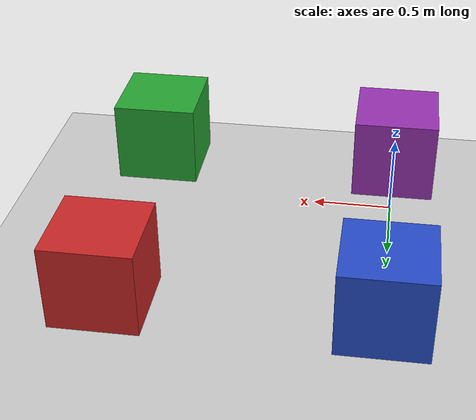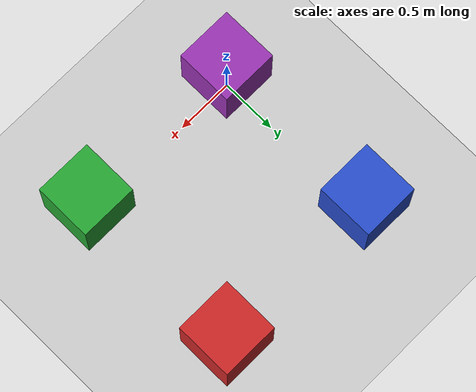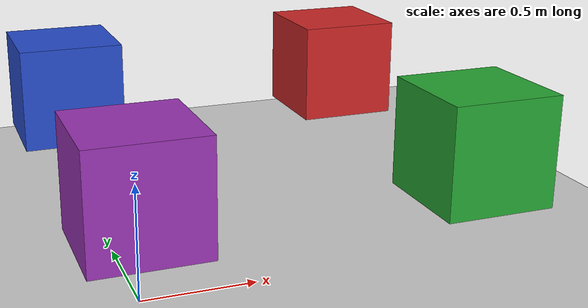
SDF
<?xml version="1.0" ?>
<sdf version="1.6">
  <world name="CaixasColoridas">
    <scene>
      <ambient>0.6 0.6 0.6 1</ambient>
      <background>0.7 0.7 0.7 1</background>
      <shadows>true</shadows>
    </scene>

    <!-- A global light source  -->
    <include>
      <uri>model://sun</uri>
      <pose> -2.0 2.0 2.0 0 0 0</pose>
    </include>

     <!-- Piso da sala vazio -->
    <include>
      <uri>model://ground_plane</uri>
    </include>

    <!-- Caixa Purple -->
    <model name='CaixaPurple'>
      <pose>0 0 0.5 0 -0 0</pose>
      <link name='link'>
        <inertial>
          <mass>1</mass>
          <inertia>
            <ixx>0.166667</ixx>
            <ixy>0</ixy>
            <ixz>0</ixz>
            <iyy>0.166667</iyy>
            <iyz>0</iyz>
            <izz>0.166667</izz>
          </inertia>
          <pose>0 0 0 0 -0 0</pose>
        </inertial>
        <collision name='collision'>
          <geometry>
            <box>
              <size>0.5 0.5 0.5</size>
            </box>
          </geometry>
          <max_contacts>10</max_contacts>
          <surface>
            <contact>
              <ode/>
            </contact>
            <bounce/>
            <friction>
              <torsional>
                <ode/>
              </torsional>
              <ode/>
            </friction>
          </surface>
        </collision>
        <visual name='visual'>
          <geometry>
            <box>
              <size>0.5 0.5 0.5</size>
            </box>
          </geometry>
          <material>
            <script>
              <name>Gazebo/Purple</name>
              <uri>file://media/materials/scripts/gazebo.material</uri>
            </script>
          </material>
        </visual>
        <self_collide>0</self_collide>
        <enable_wind>0</enable_wind>
        <kinematic>0</kinematic>
      </link>
    </model>

    <!-- Caixa Verde -->
    <model name='CaixaVerde'>
      <pose>1.5 0 0.5 0 -0 0</pose>
      <link name='link'>
        <inertial>
          <mass>1</mass>
          <inertia>
            <ixx>0.166667</ixx>
            <ixy>0</ixy>
            <ixz>0</ixz>
            <iyy>0.166667</iyy>
            <iyz>0</iyz>
            <izz>0.166667</izz>
          </inertia>
          <pose>0 0 0 0 -0 0</pose>
        </inertial>
        <collision name='collision'>
          <geometry>
            <box>
              <size>0.5 0.5 0.5</size>
            </box>
          </geometry>
          <max_contacts>10</max_contacts>
          <surface>
            <contact>
              <ode/>
            </contact>
            <bounce/>
            <friction>
              <torsional>
                <ode/>
              </torsional>
              <ode/>
            </friction>
          </surface>
        </collision>
        <visual name='visual'>
          <geometry>
            <box>
              <size>0.5 0.5 0.5</size>
            </box>
          </geometry>
          <material>
            <script>
              <name>Gazebo/Green</name>
              <uri>file://media/materials/scripts/gazebo.material</uri>
            </script>
          </material>
        </visual>
        <self_collide>0</self_collide>
        <enable_wind>0</enable_wind>
        <kinematic>0</kinematic>
      </link>
    </model>

    <!-- Caixa Azul -->
    <model name='CaixaAzul'>
      <pose>0 1.5 0.5 0 -0 0</pose>
      <link name='link'>
        <inertial>
          <mass>1</mass>
          <inertia>
            <ixx>0.166667</ixx>
            <ixy>0</ixy>
            <ixz>0</ixz>
            <iyy>0.166667</iyy>
            <iyz>0</iyz>
            <izz>0.166667</izz>
          </inertia>
          <pose>0 0 0 0 -0 0</pose>
        </inertial>
        <collision name='collision'>
          <geometry>
            <box>
              <size>0.5 0.5 0.5</size>
            </box>
          </geometry>
          <max_contacts>10</max_contacts>
          <surface>
            <contact>
              <ode/>
            </contact>
            <bounce/>
            <friction>
              <torsional>
                <ode/>
              </torsional>
              <ode/>
            </friction>
          </surface>
        </collision>
        <visual name='visual'>
          <geometry>
            <box>
              <size>0.5 0.5 0.5</size>
            </box>
          </geometry>
          <material>
            <script>
              <name>Gazebo/Blue</name>
              <uri>file://media/materials/scripts/gazebo.material</uri>
            </script>
          </material>
        </visual>
        <self_collide>0</self_collide>
        <enable_wind>0</enable_wind>
        <kinematic>0</kinematic>
      </link>
    </model>

    <!-- Caixa Vermelha -->
    <model name='CaixaVermelha'>
      <pose>1.5 1.5 0.5 0 -0 0</pose>
      <link name='link'>
        <inertial>
          <mass>1</mass>
          <inertia>
            <ixx>0.166667</ixx>
            <ixy>0</ixy>
            <ixz>0</ixz>
            <iyy>0.166667</iyy>
            <iyz>0</iyz>
            <izz>0.166667</izz>
          </inertia>
          <pose>0 0 0 0 -0 0</pose>
        </inertial>
        <collision name='collision'>
          <geometry>
            <box>
              <size>0.5 0.5 0.5</size>
            </box>
          </geometry>
          <max_contacts>10</max_contacts>
          <surface>
            <contact>
              <ode/>
            </contact>
            <bounce/>
            <friction>
              <torsional>
                <ode/>
              </torsional>
              <ode/>
            </friction>
          </surface>
        </collision>
        <visual name='visual'>
          <geometry>
            <box>
              <size>0.5 0.5 0.5</size>
            </box>
          </geometry>
          <material>
            <script>
              <name>Gazebo/Red</name>
              <uri>file://media/materials/scripts/gazebo.material</uri>
            </script>
          </material>
        </visual>
        <self_collide>0</self_collide>
        <enable_wind>0</enable_wind>
        <kinematic>0</kinematic>
      </link>
    </model>

    <!-- posicao camera inicial -->
    <gui fullscreen='0'>
      <camera name='user_camera'>
        <pose frame=''>3 -7 10 -0 0.979642 2</pose>
        <view_controller>orbit</view_controller>
        <projection_type>perspective</projection_type>
      </camera>
    </gui>

  </world>
</sdf>
